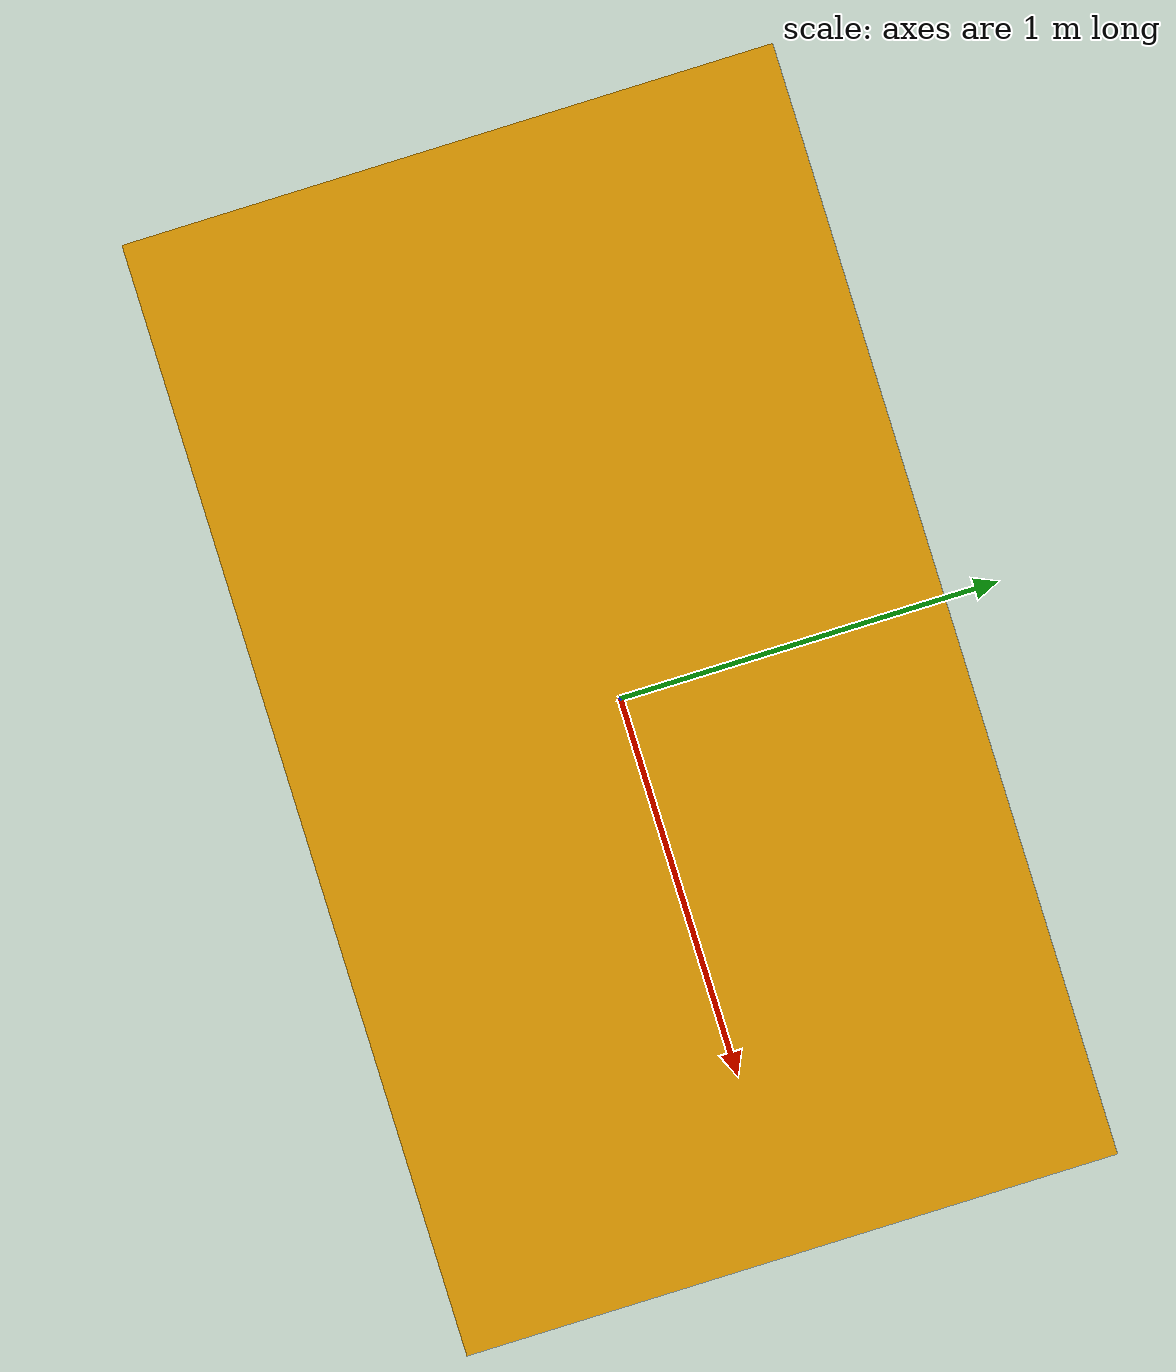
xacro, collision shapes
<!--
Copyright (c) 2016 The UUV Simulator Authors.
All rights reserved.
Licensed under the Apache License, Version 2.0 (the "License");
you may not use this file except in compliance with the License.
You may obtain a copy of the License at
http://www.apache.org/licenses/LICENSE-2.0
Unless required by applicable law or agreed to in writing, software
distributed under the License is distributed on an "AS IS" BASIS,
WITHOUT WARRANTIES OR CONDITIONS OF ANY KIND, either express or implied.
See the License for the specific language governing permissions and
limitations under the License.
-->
<?xml version="1.0"?>

<robot name="rexrov2" xmlns:xacro="http://www.ros.org/wiki/xacro" >
  <xacro:arg name="debug" default="1"/>
  <xacro:arg name="namespace" default="rexrov2"/>
  <xacro:arg name="use_simplified_mesh" default="false"/>
  <xacro:arg name="inertial_reference_frame" default="world"/>
  <!-- Include the ROV macro file -->
  <xacro:include filename="$(find rexrov2_description)/urdf/rexrov2_base_diag_urdf.xacro"/>
  <!-- Create the rexrov2 -->
  <xacro:rexrov2_base
    namespace="$(arg namespace)"
    use_simplified_mesh="$(arg use_simplified_mesh)">
  </xacro:rexrov2_base>

</robot>

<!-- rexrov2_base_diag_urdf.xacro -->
<robot xmlns:xacro="http://www.ros.org/wiki/xacro" >
  <!-- Parameters -->
  <xacro:property name="visual_mesh_file" value="file://$(find rexrov2_description)/meshes/RexROV2_no_props.dae"/>

  <!-- Mass, see p.28 in Berg2012 -->
  <xacro:property name="mass" value="1862.87"/>

  <xacro:macro name="rexrov2_base" params="namespace use_simplified_mesh">
    <!-- Defining base link according to ROS conventions: x forward, z up -->
    <link name="${namespace}/base_link">
      <!-- This visual geometry representation can be used when running
           tasks in which you need Gazebo to start quickly
      -->
      <xacro:if value="${use_simplified_mesh}">
        <!-- bottom plate -->
        <visual>
          <origin xyz="0 0 -0.75" rpy="0 0 0"/>
          <geometry>
            <box size="2.56 1.50 0.10"/>
          </geometry>
        </visual>
        <!-- top plate -->
        <visual>
          <origin xyz="0 0 0.60" rpy="0 0 0"/>
          <geometry><box size="2.56 1.50 0.40"/></geometry>
        </visual>
        <!-- left / right sides -->
        <visual>
          <origin xyz="-0.20 0.70 -0.15" rpy="0 0 0"/>
          <geometry><box size="2.20 0.10 1.10"/></geometry>
        </visual>
        <visual>
          <origin xyz="-0.20 -0.70 -0.15" rpy="0 0 0"/>
          <geometry><box size="2.20 0.10 1.10"/></geometry>
        </visual>
      </xacro:if>

      <xacro:unless value="${use_simplified_mesh}">
        <visual>
          <origin xyz="0 0 0" rpy="0 0 0"/>
          <geometry>
            <mesh filename="${visual_mesh_file}" scale="1 1 1"/>
          </geometry>
        </visual>
      </xacro:unless>

      <!-- bottom plate -->
      <collision>
        <origin xyz="0 0 -0.75" rpy="0 0 0"/>
        <geometry>
          <box size="2.56 1.50 0.10"/>
        </geometry>
      </collision>
      <!-- top plate -->
      <collision>
        <origin xyz="0 0 0.60" rpy="0 0 0"/>
        <geometry><box size="2.56 1.50 0.40"/></geometry>
      </collision>
      <!-- left / right sides -->
      <collision>
        <origin xyz="-0.20 0.70 -0.15" rpy="0 0 0"/>
        <geometry><box size="2.20 0.10 1.10"/></geometry>
      </collision>
      <collision>
        <origin xyz="-0.20 -0.70 -0.15" rpy="0 0 0"/>
        <geometry><box size="2.20 0.10 1.10"/></geometry>
      </collision>
    </link>

  </xacro:macro>

</robot>
